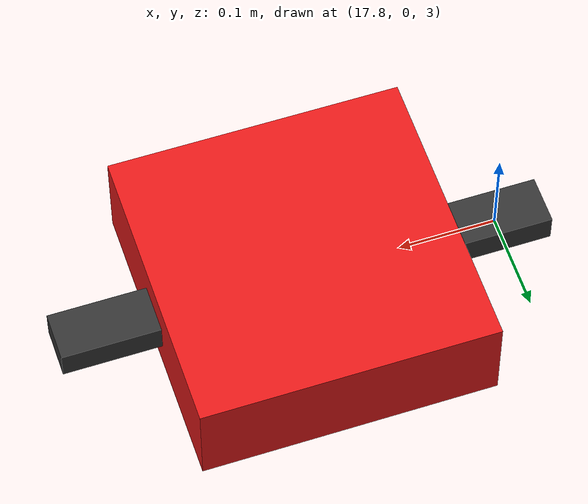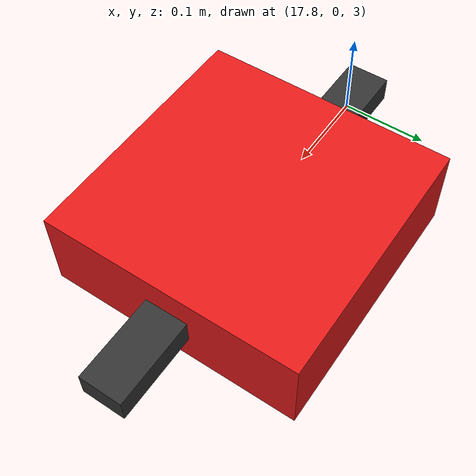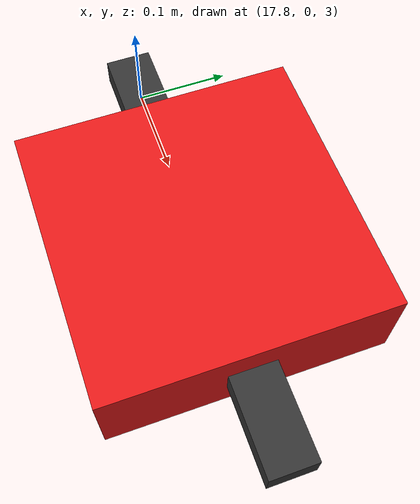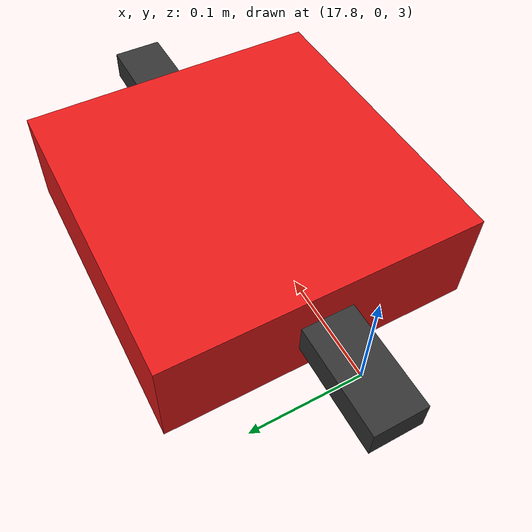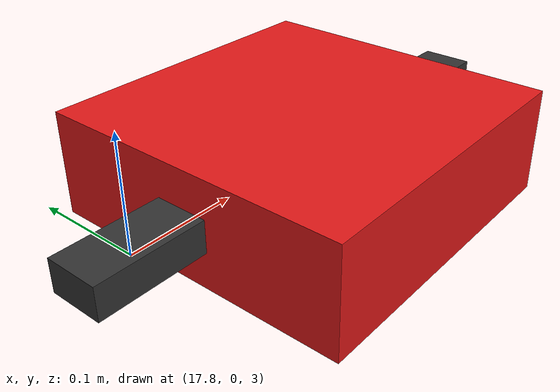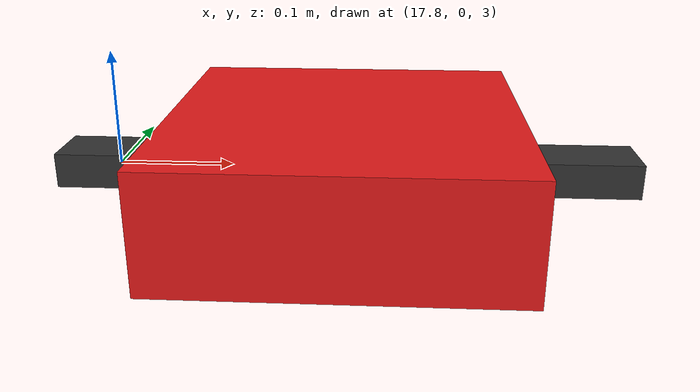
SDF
<?xml version="1.0" ?>
<sdf version="1.9">
  <world name="riposte_closure">
    <physics name="1ms" type="ignored">
      <max_step_size>0.004</max_step_size>
      <real_time_factor>1.0</real_time_factor>
    </physics>

    <plugin filename="gz-sim-physics-system" name="gz::sim::systems::Physics"/>
    <plugin filename="gz-sim-user-commands-system"
            name="gz::sim::systems::UserCommands"/>
    <plugin filename="gz-sim-scene-broadcaster-system"
            name="gz::sim::systems::SceneBroadcaster"/>
    <plugin filename="gz-sim-sensors-system" name="gz::sim::systems::Sensors">
      <render_engine>ogre2</render_engine>
    </plugin>
    <!-- x500 sensor feeds (IMU/baro/GPS) — PX4 EKF needs these world systems. -->
    <plugin filename="gz-sim-imu-system" name="gz::sim::systems::Imu"/>
    <plugin filename="gz-sim-magnetometer-system" name="gz::sim::systems::Magnetometer"/>
    <plugin filename="gz-sim-air-pressure-system"
            name="gz::sim::systems::AirPressure"/>
    <plugin filename="gz-sim-navsat-system" name="gz::sim::systems::NavSat"/>

    <!-- PX4 GPS origin (matches PX4 default SITL home). -->
    <spherical_coordinates>
      <surface_model>EARTH_WGS84</surface_model>
      <world_frame_orientation>ENU</world_frame_orientation>
      <latitude_deg>47.397971057728974</latitude_deg>
      <longitude_deg>8.546163739800146</longitude_deg>
      <elevation>0</elevation>
    </spherical_coordinates>

    <light type="directional" name="sun">
      <cast_shadows>true</cast_shadows>
      <pose>0 0 10 0 0 0</pose>
      <diffuse>0.8 0.8 0.8 1</diffuse>
      <specular>0.2 0.2 0.2 1</specular>
      <direction>-0.5 0.1 -0.9</direction>
    </light>

    <model name="ground_plane">
      <static>true</static>
      <link name="link">
        <collision name="collision">
          <geometry><plane><normal>0 0 1</normal><size>200 200</size></plane></geometry>
        </collision>
        <visual name="visual">
          <geometry><plane><normal>0 0 1</normal><size>200 200</size></plane></geometry>
          <material>
            <ambient>0.3 0.35 0.3 1</ambient>
            <diffuse>0.3 0.4 0.3 1</diffuse>
          </material>
        </visual>
      </link>
    </model>

    <!-- Target drone: starts 18 m East, 3 m Up, crosses at ~1.5 m/s.
         VelocityControl integrates the commanded body velocity kinematically. -->
    <model name="target">
      <pose>18 0 3 0 0 0</pose>
      <link name="body">
        <inertial>
          <mass>0.5</mass>
          <inertia><ixx>0.01</ixx><iyy>0.01</iyy><izz>0.02</izz>
                   <ixy>0</ixy><ixz>0</ixz><iyz>0</iyz></inertia>
        </inertial>
        <visual name="core">
          <geometry><box><size>0.30 0.30 0.10</size></box></geometry>
          <material>
            <ambient>0.8 0.1 0.1 1</ambient>
            <diffuse>0.9 0.1 0.1 1</diffuse>
          </material>
        </visual>
        <visual name="arm">
          <geometry><box><size>0.5 0.05 0.03</size></box></geometry>
          <material><diffuse>0.2 0.2 0.2 1</diffuse></material>
        </visual>
      </link>
      <plugin filename="gz-sim-velocity-control-system"
              name="gz::sim::systems::VelocityControl">
        <initial_linear>-1.5 0.6 0.0</initial_linear>
        <initial_angular>0 0 0</initial_angular>
      </plugin>
    </model>
  </world>
</sdf>
